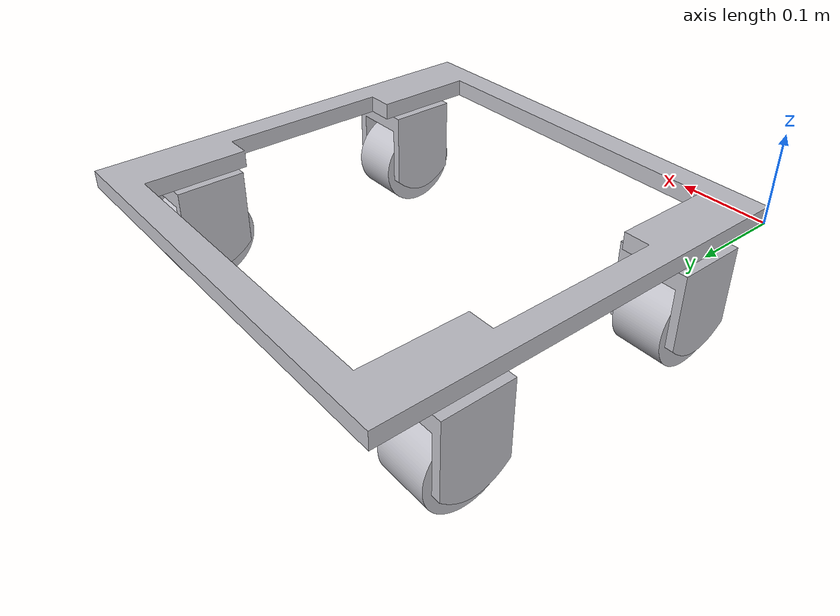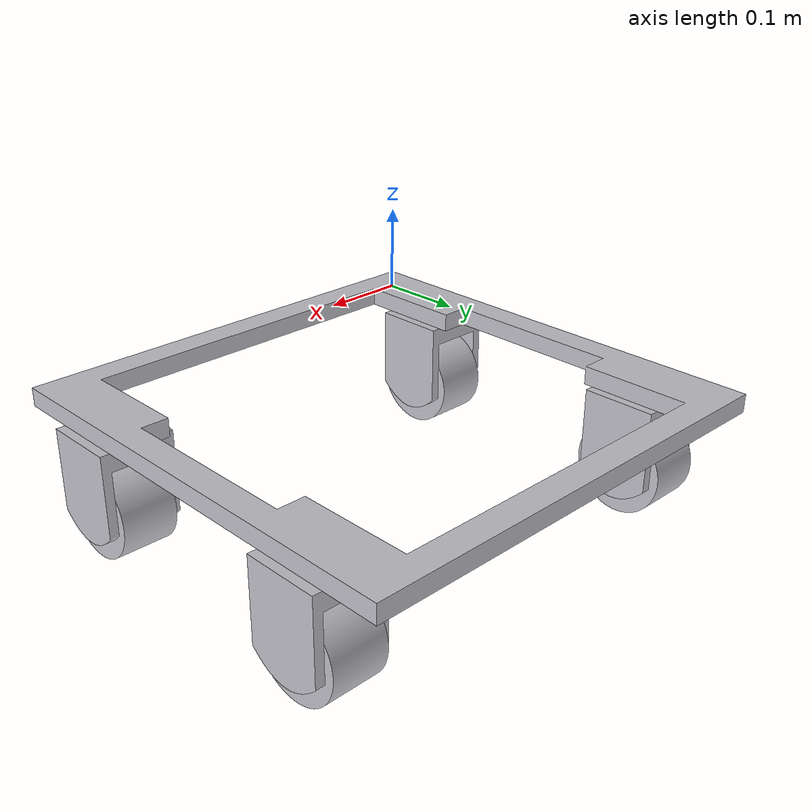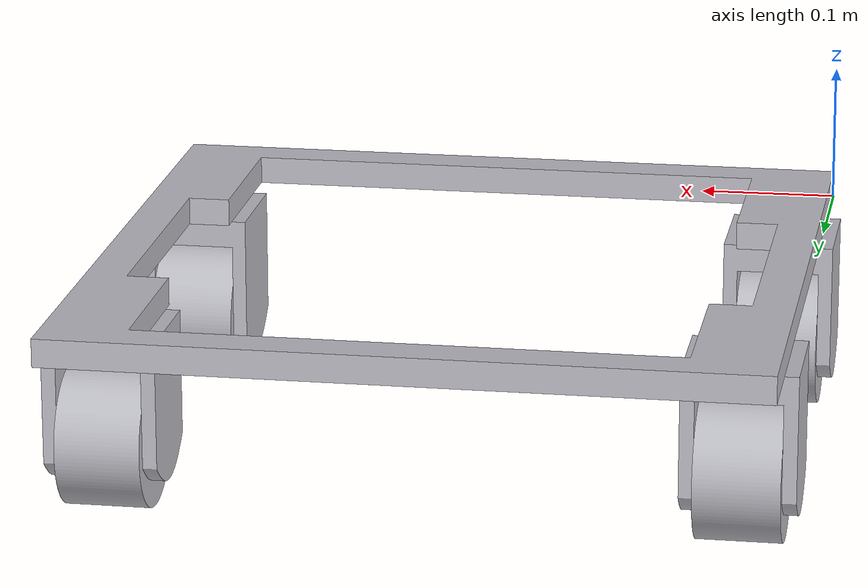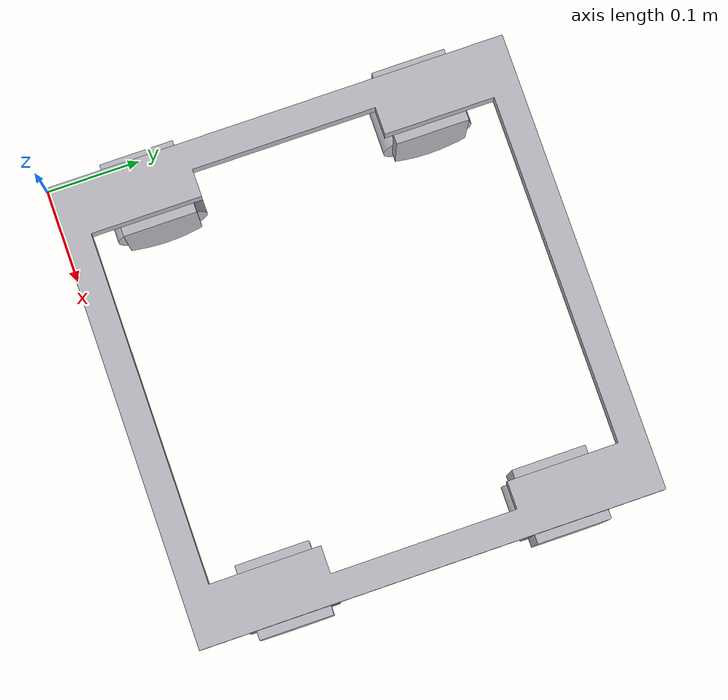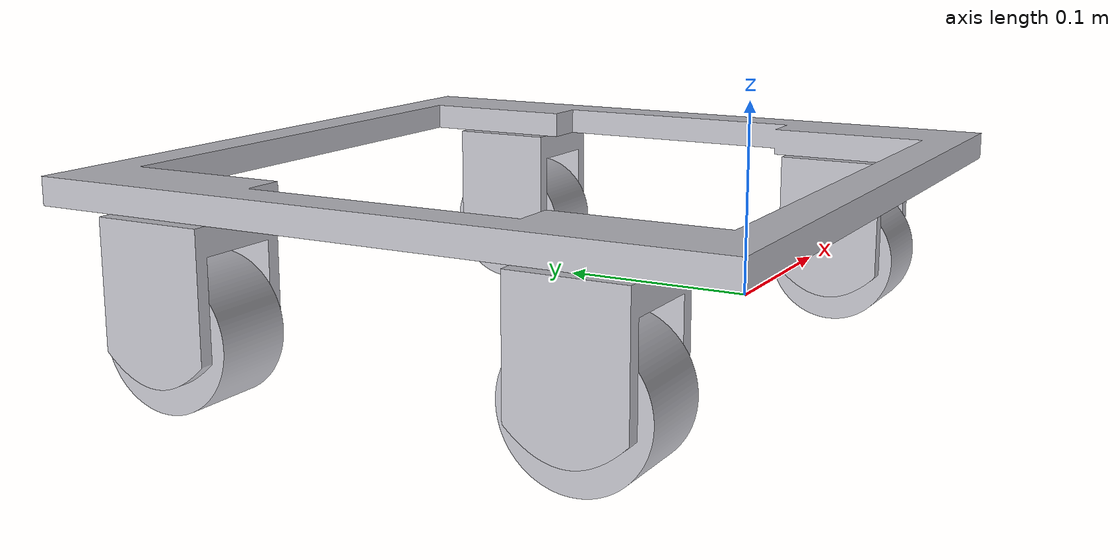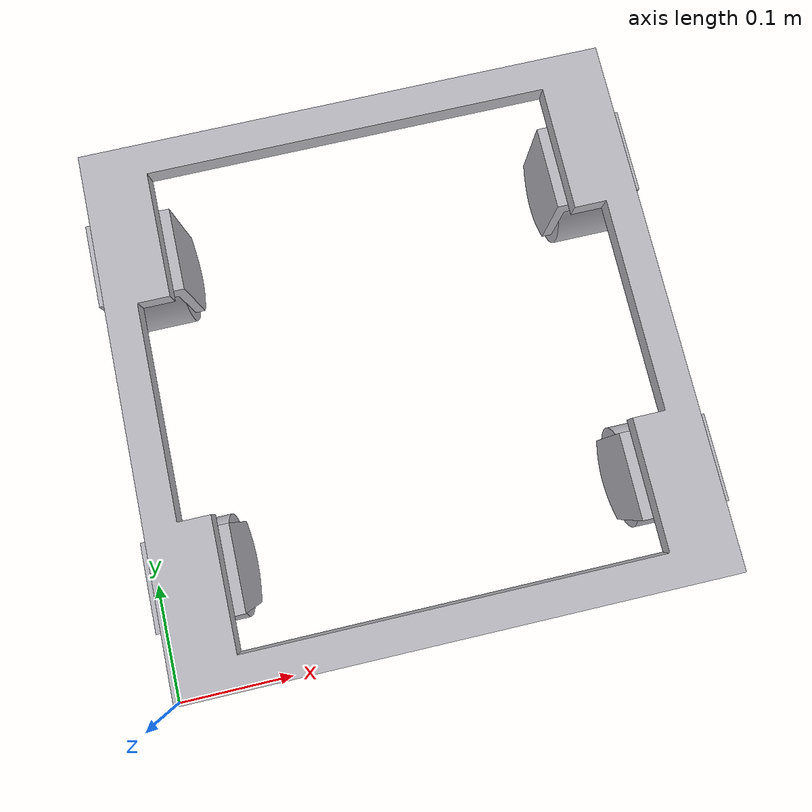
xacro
<?xml version="1.0" ?>
<robot name="(Unsaved)" xmlns:xacro="http://www.ros.org/wiki/xacro">

<xacro:include filename="$(find (Unsaved)_description)/urdf/materials.xacro" />
<xacro:include filename="$(find (Unsaved)_description)/urdf/(Unsaved).trans" />
<xacro:include filename="$(find (Unsaved)_description)/urdf/(Unsaved).gazebo" />
<link name="base_link">
  <inertial>
    <origin xyz="0.25000000000019557 0.24999999999999992 0.008002902975586378" rpy="0 0 0"/>
    <mass value="12.348675116534034"/>
    <inertia ixx="0.416714" iyy="0.483241" izz="0.898244" ixy="0.0" iyz="-0.0" ixz="0.0"/>
  </inertial>
  <visual>
    <origin xyz="0 0 0" rpy="0 0 0"/>
    <geometry>
      <mesh filename="package://(Unsaved)_description/meshes/base_link.stl" scale="0.001 0.001 0.001"/>
    </geometry>
    <material name="silver"/>
  </visual>
  <collision>
    <origin xyz="0 0 0" rpy="0 0 0"/>
    <geometry>
      <mesh filename="package://(Unsaved)_description/meshes/base_link.stl" scale="0.001 0.001 0.001"/>
    </geometry>
  </collision>
</link>

<link name="J1_1_1">
  <inertial>
    <origin xyz="7.810161864463261e-09 3.176972616925067e-08 -0.057975825376308965" rpy="0 0 0"/>
    <mass value="3.07492402154736"/>
    <inertia ixx="0.004522" iyy="0.00539" izz="0.003488" ixy="-0.0" iyz="0.0" ixz="0.0"/>
  </inertial>
  <visual>
    <origin xyz="-0.03 -0.1 -0.0" rpy="0 0 0"/>
    <geometry>
      <mesh filename="package://(Unsaved)_description/meshes/J1_1_1.stl" scale="0.001 0.001 0.001"/>
    </geometry>
    <material name="silver"/>
  </visual>
  <collision>
    <origin xyz="-0.03 -0.1 -0.0" rpy="0 0 0"/>
    <geometry>
      <mesh filename="package://(Unsaved)_description/meshes/J1_1_1.stl" scale="0.001 0.001 0.001"/>
    </geometry>
  </collision>
</link>

<link name="J2_1_1">
  <inertial>
    <origin xyz="7.810161864463261e-09 3.176903756729743e-08 -0.057975825376308965" rpy="0 0 0"/>
    <mass value="3.074924021547359"/>
    <inertia ixx="0.004522" iyy="0.00539" izz="0.003488" ixy="-0.0" iyz="0.0" ixz="0.0"/>
  </inertial>
  <visual>
    <origin xyz="-0.03 -0.4 -0.0" rpy="0 0 0"/>
    <geometry>
      <mesh filename="package://(Unsaved)_description/meshes/J2_1_1.stl" scale="0.001 0.001 0.001"/>
    </geometry>
    <material name="silver"/>
  </visual>
  <collision>
    <origin xyz="-0.03 -0.4 -0.0" rpy="0 0 0"/>
    <geometry>
      <mesh filename="package://(Unsaved)_description/meshes/J2_1_1.stl" scale="0.001 0.001 0.001"/>
    </geometry>
  </collision>
</link>

<link name="J3_1_1">
  <inertial>
    <origin xyz="7.809152047233425e-09 3.176972616925067e-08 -0.057975825376309006" rpy="0 0 0"/>
    <mass value="3.0749240215473637"/>
    <inertia ixx="0.004522" iyy="0.00539" izz="0.003488" ixy="-0.0" iyz="0.0" ixz="0.0"/>
  </inertial>
  <visual>
    <origin xyz="-0.47 -0.1 -0.0" rpy="0 0 0"/>
    <geometry>
      <mesh filename="package://(Unsaved)_description/meshes/J3_1_1.stl" scale="0.001 0.001 0.001"/>
    </geometry>
    <material name="silver"/>
  </visual>
  <collision>
    <origin xyz="-0.47 -0.1 -0.0" rpy="0 0 0"/>
    <geometry>
      <mesh filename="package://(Unsaved)_description/meshes/J3_1_1.stl" scale="0.001 0.001 0.001"/>
    </geometry>
  </collision>
</link>

<link name="J4_1_1">
  <inertial>
    <origin xyz="7.809151991722274e-09 3.176903756729743e-08 -0.057975825376308986" rpy="0 0 0"/>
    <mass value="3.074924021547362"/>
    <inertia ixx="0.004522" iyy="0.00539" izz="0.003488" ixy="-0.0" iyz="0.0" ixz="0.0"/>
  </inertial>
  <visual>
    <origin xyz="-0.47 -0.4 -0.0" rpy="0 0 0"/>
    <geometry>
      <mesh filename="package://(Unsaved)_description/meshes/J4_1_1.stl" scale="0.001 0.001 0.001"/>
    </geometry>
    <material name="silver"/>
  </visual>
  <collision>
    <origin xyz="-0.47 -0.4 -0.0" rpy="0 0 0"/>
    <geometry>
      <mesh filename="package://(Unsaved)_description/meshes/J4_1_1.stl" scale="0.001 0.001 0.001"/>
    </geometry>
  </collision>
</link>

<link name="W1_1">
  <inertial>
    <origin xyz="0.030000000000000013 0.0 2.7755575615628914e-17" rpy="0 0 0"/>
    <mass value="2.367504223745268"/>
    <inertia ixx="0.004025" iyy="0.002723" izz="0.002723" ixy="-0.0" iyz="0.0" ixz="-0.0"/>
  </inertial>
  <visual>
    <origin xyz="-0.0 -0.1 0.08" rpy="0 0 0"/>
    <geometry>
      <mesh filename="package://(Unsaved)_description/meshes/W1_1.stl" scale="0.001 0.001 0.001"/>
    </geometry>
    <material name="silver"/>
  </visual>
  <collision>
    <origin xyz="-0.0 -0.1 0.08" rpy="0 0 0"/>
    <geometry>
      <mesh filename="package://(Unsaved)_description/meshes/W1_1.stl" scale="0.001 0.001 0.001"/>
    </geometry>
  </collision>
</link>

<link name="W2_1">
  <inertial>
    <origin xyz="0.03 0.0 4.163336342344337e-17" rpy="0 0 0"/>
    <mass value="2.367504223745268"/>
    <inertia ixx="0.004025" iyy="0.002723" izz="0.002723" ixy="-0.0" iyz="-0.0" ixz="-0.0"/>
  </inertial>
  <visual>
    <origin xyz="-0.0 -0.4 0.08" rpy="0 0 0"/>
    <geometry>
      <mesh filename="package://(Unsaved)_description/meshes/W2_1.stl" scale="0.001 0.001 0.001"/>
    </geometry>
    <material name="silver"/>
  </visual>
  <collision>
    <origin xyz="-0.0 -0.4 0.08" rpy="0 0 0"/>
    <geometry>
      <mesh filename="package://(Unsaved)_description/meshes/W2_1.stl" scale="0.001 0.001 0.001"/>
    </geometry>
  </collision>
</link>

<link name="W3_1">
  <inertial>
    <origin xyz="0.02999999999999997 0.0 2.7755575615628914e-17" rpy="0 0 0"/>
    <mass value="2.367504223745268"/>
    <inertia ixx="0.004025" iyy="0.002723" izz="0.002723" ixy="0.0" iyz="0.0" ixz="-0.0"/>
  </inertial>
  <visual>
    <origin xyz="-0.44 -0.1 0.08" rpy="0 0 0"/>
    <geometry>
      <mesh filename="package://(Unsaved)_description/meshes/W3_1.stl" scale="0.001 0.001 0.001"/>
    </geometry>
    <material name="silver"/>
  </visual>
  <collision>
    <origin xyz="-0.44 -0.1 0.08" rpy="0 0 0"/>
    <geometry>
      <mesh filename="package://(Unsaved)_description/meshes/W3_1.stl" scale="0.001 0.001 0.001"/>
    </geometry>
  </collision>
</link>

<link name="W4_1">
  <inertial>
    <origin xyz="0.030000000000000138 0.0 2.7755575615628914e-17" rpy="0 0 0"/>
    <mass value="2.367504223745268"/>
    <inertia ixx="0.004025" iyy="0.002723" izz="0.002723" ixy="0.0" iyz="0.0" ixz="-0.0"/>
  </inertial>
  <visual>
    <origin xyz="-0.44 -0.4 0.08" rpy="0 0 0"/>
    <geometry>
      <mesh filename="package://(Unsaved)_description/meshes/W4_1.stl" scale="0.001 0.001 0.001"/>
    </geometry>
    <material name="silver"/>
  </visual>
  <collision>
    <origin xyz="-0.44 -0.4 0.08" rpy="0 0 0"/>
    <geometry>
      <mesh filename="package://(Unsaved)_description/meshes/W4_1.stl" scale="0.001 0.001 0.001"/>
    </geometry>
  </collision>
</link>

<joint name="J1" type="continuous">
  <origin xyz="0.03 0.1 0.0" rpy="0 0 0"/>
  <parent link="base_link"/>
  <child link="J1_1_1"/>
  <axis xyz="0.0 0.0 -1.0"/>
</joint>

<joint name="J2" type="continuous">
  <origin xyz="0.03 0.4 0.0" rpy="0 0 0"/>
  <parent link="base_link"/>
  <child link="J2_1_1"/>
  <axis xyz="0.0 0.0 -1.0"/>
</joint>

<joint name="J3" type="continuous">
  <origin xyz="0.47 0.1 0.0" rpy="0 0 0"/>
  <parent link="base_link"/>
  <child link="J3_1_1"/>
  <axis xyz="0.0 0.0 -1.0"/>
</joint>

<joint name="J4" type="continuous">
  <origin xyz="0.47 0.4 0.0" rpy="0 0 0"/>
  <parent link="base_link"/>
  <child link="J4_1_1"/>
  <axis xyz="0.0 0.0 -1.0"/>
</joint>

<joint name="W1" type="continuous">
  <origin xyz="-0.03 0.0 -0.08" rpy="0 0 0"/>
  <parent link="J1_1_1"/>
  <child link="W1_1"/>
  <axis xyz="1.0 -0.0 0.0"/>
</joint>

<joint name="W2" type="continuous">
  <origin xyz="-0.03 0.0 -0.08" rpy="0 0 0"/>
  <parent link="J2_1_1"/>
  <child link="W2_1"/>
  <axis xyz="1.0 -0.0 0.0"/>
</joint>

<joint name="W3" type="continuous">
  <origin xyz="-0.03 0.0 -0.08" rpy="0 0 0"/>
  <parent link="J3_1_1"/>
  <child link="W3_1"/>
  <axis xyz="1.0 -0.0 0.0"/>
</joint>

<joint name="W4" type="continuous">
  <origin xyz="-0.03 0.0 -0.08" rpy="0 0 0"/>
  <parent link="J4_1_1"/>
  <child link="W4_1"/>
  <axis xyz="1.0 -0.0 0.0"/>
</joint>

</robot>

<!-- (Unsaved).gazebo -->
<robot name="(Unsaved)" xmlns:xacro="http://www.ros.org/wiki/xacro" >

<xacro:property name="body_color" value="Gazebo/Silver" />

<gazebo>
  <plugin name="control" filename="libgazebo_ros_control.so"/>
</gazebo>
<gazebo reference="base_link">
  <material>${body_color}</material>
  <mu1>0.2</mu1>
  <mu2>0.2</mu2>
  <selfCollide>true</selfCollide>
  <gravity>true</gravity>
</gazebo>

<gazebo reference="J1_1_1">
  <material>${body_color}</material>
  <mu1>0.2</mu1>
  <mu2>0.2</mu2>
  <selfCollide>true</selfCollide>
</gazebo>

<gazebo reference="J2_1_1">
  <material>${body_color}</material>
  <mu1>0.2</mu1>
  <mu2>0.2</mu2>
  <selfCollide>true</selfCollide>
</gazebo>

<gazebo reference="J3_1_1">
  <material>${body_color}</material>
  <mu1>0.2</mu1>
  <mu2>0.2</mu2>
  <selfCollide>true</selfCollide>
</gazebo>

<gazebo reference="J4_1_1">
  <material>${body_color}</material>
  <mu1>0.2</mu1>
  <mu2>0.2</mu2>
  <selfCollide>true</selfCollide>
</gazebo>

<gazebo reference="W1_1">
  <material>${body_color}</material>
  <mu1>0.2</mu1>
  <mu2>0.2</mu2>
  <selfCollide>true</selfCollide>
</gazebo>

<gazebo reference="W2_1">
  <material>${body_color}</material>
  <mu1>0.2</mu1>
  <mu2>0.2</mu2>
  <selfCollide>true</selfCollide>
</gazebo>

<gazebo reference="W3_1">
  <material>${body_color}</material>
  <mu1>0.2</mu1>
  <mu2>0.2</mu2>
  <selfCollide>true</selfCollide>
</gazebo>

<gazebo reference="W4_1">
  <material>${body_color}</material>
  <mu1>0.2</mu1>
  <mu2>0.2</mu2>
  <selfCollide>true</selfCollide>
</gazebo>

</robot>
